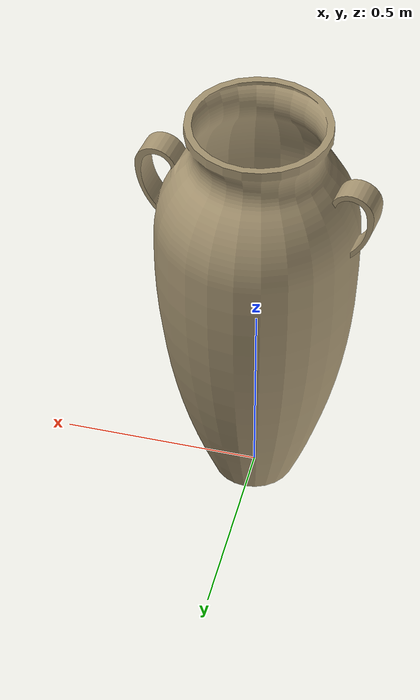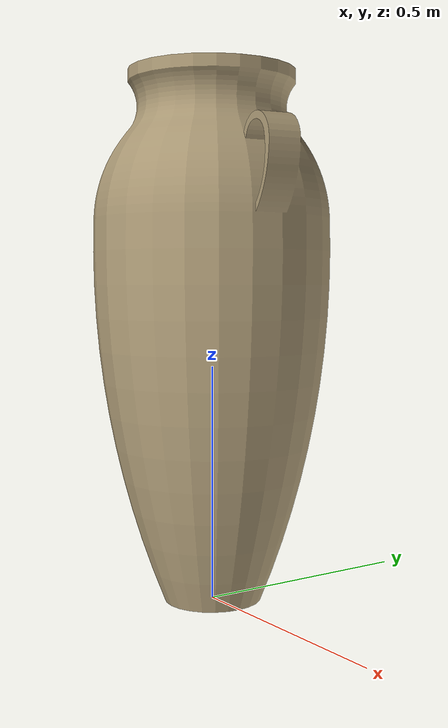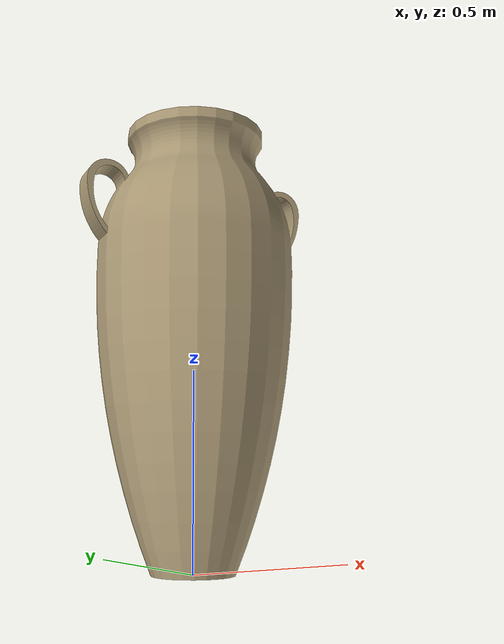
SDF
<?xml version='1.0'?>
<sdf version='1.6'>
  <model name='vase_large_2'>
    <link name='link_31'>
      <pose frame=''>0 0 0 0 -0 0</pose>

      <visual name='visual'>
        <pose frame=''>0 0 0 0 -0 0</pose>
        <geometry>
          <mesh>
            <uri>model://vase_large_2/meshes/vase3_1.dae</uri>
            <scale>1 1 1</scale>
          </mesh>
        </geometry>
    <material>
          <script>
            <uri>model://vase_large_2/materials/scripts</uri>
            <uri>model://vase_large_2/materials/textures</uri>
            <name>vase_pattern2</name>
          </script>
        </material>
        <cast_shadows>1</cast_shadows>
        <transparency>0</transparency>
      </visual>
      <collision name='collision'>
        <laser_retro>0</laser_retro>
        <max_contacts>10</max_contacts>
        <pose frame=''>0 0 0 0 -0 0</pose>
        <geometry>
          <mesh>
            <uri>model://vase_large_2/meshes/vase3_1.dae</uri>
            <scale>1 1 1</scale>
          </mesh>
        </geometry>
      </collision>
    </link>
    <static>1</static>
    <allow_auto_disable>1</allow_auto_disable>
  </model>
</sdf>
